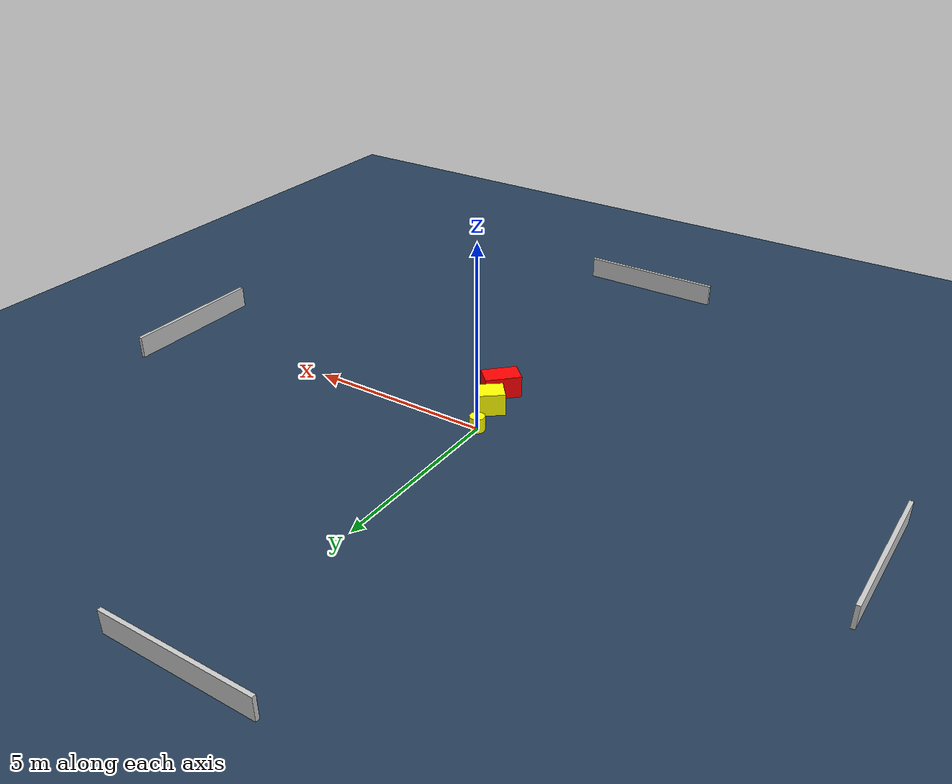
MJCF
<?xml version="1.0" ?>
<mujoco model="generated_environment">
  <option timestep="0.01" integrator="RK4" cone="elliptic"/>
  <default>
    <geom density="1"/>
  </default>
  <asset>
    <texture builtin="gradient" height="3072" name="skybox" rgb1="0.3 0.5 0.7" rgb2="0 0 0" type="skybox" width="512"/>
    <texture builtin="checker" height="300" name="groundplane" rgb1="0.2 0.3 0.4" rgb2="0.1 0.2 0.3" type="2d" width="300"/>
    <material name="groundplane" reflectance="0.2" texrepeat="5 5" texture="groundplane"/>
  </asset>
  <worldbody>
    <light dir="0 0 -1" directional="true" pos="0 0 1.5"/>
    <geom condim="3" friction="0.5 0.005 0.001" material="groundplane" name="floor" pos="0 0 0" size="0 0 0.05" type="plane"/>
    <body name="walls">
      <geom name="wall_1" condim="4" pos="-10.0 0.0 0.3" rgba="0.800000011920929 0.800000011920929 0.800000011920929 1.0" size="0.05 2.0 0.3" type="box"/>
      <geom name="wall_2" condim="4" pos="10.0 0.0 0.3" rgba="0.800000011920929 0.800000011920929 0.800000011920929 1.0" size="0.05 2.0 0.3" type="box"/>
      <geom name="wall_3" condim="4" pos="0.0 -10.0 0.3" rgba="0.800000011920929 0.800000011920929 0.800000011920929 1.0" size="2.0 0.05 0.3" type="box"/>
      <geom name="wall_4" condim="4" pos="0.0 10.0 0.3" rgba="0.800000011920929 0.800000011920929 0.800000011920929 1.0" size="2.0 0.05 0.3" type="box"/>
    </body>
    <body name="robot">
      <joint name="joint_x" type="slide" pos="0 0 0" axis="1 0 0"/>
      <joint name="joint_y" type="slide" pos="0 0 0" axis="0 1 0"/>
      <geom name="robot" type="cylinder" pos="0.0 0.0 0.2" size="0.2 0.2 0.0" mass="5.0" friction="1.0 0.005 0.0001" condim="4" rgba="1.0 1.0 0.0 1.0"/>
    </body>
    <body name="obstacle_1_movable">
      <geom name="obstacle_1_movable" condim="4" pos="0.25511317187006094 -0.9755518365214064 0.3" euler="0 0 219.18310979420895" friction="0.0 0.005 0.001" rgba="1.0 1.0 0.0 1.0" size="0.37178081995164874 0.3053728158410022 0.3" type="box" mass="0.1"/>
      <joint type="free"/>
    </body>
    <body name="obstacle_2_static">
      <geom name="obstacle_2_static" condim="4" pos="0.46836231664777006 -1.8554494539267565 0.3" euler="0 0 135.1743503090218" friction="0.0 0.005 0.001" rgba="1.0 0.0 0.0 1.0" size="0.301483649623317 0.4908433652238909 0.3" type="box"/>
    </body>
  </worldbody>
  <actuator>
    <motor name="actuator_x" joint="joint_x" gear="1" ctrlrange="-1 1"/>
    <motor name="actuator_y" joint="joint_y" gear="1" ctrlrange="-1 1"/>
  </actuator>
</mujoco>
